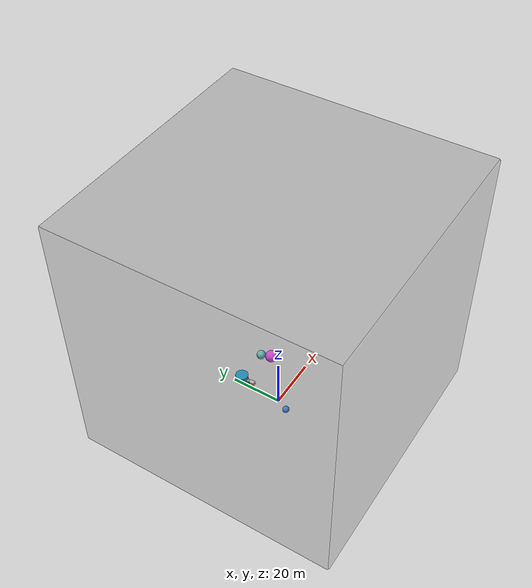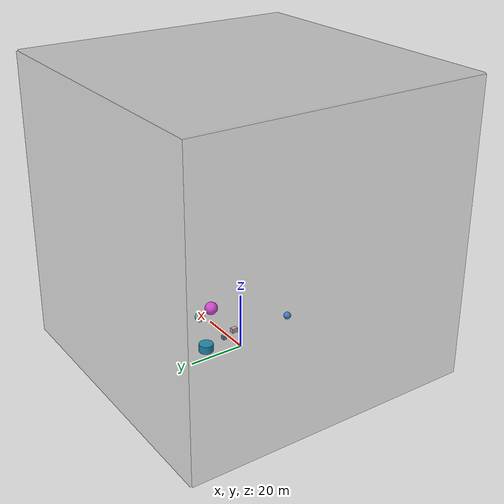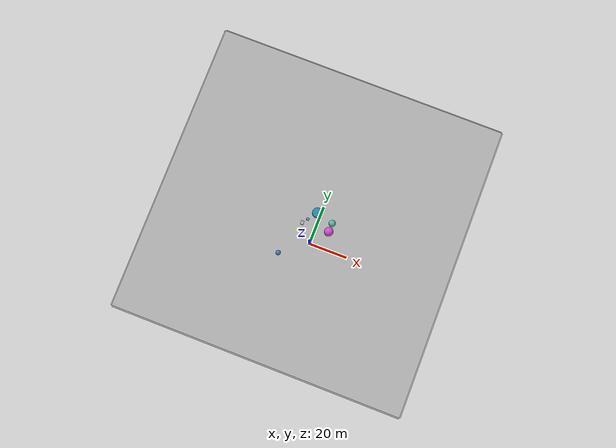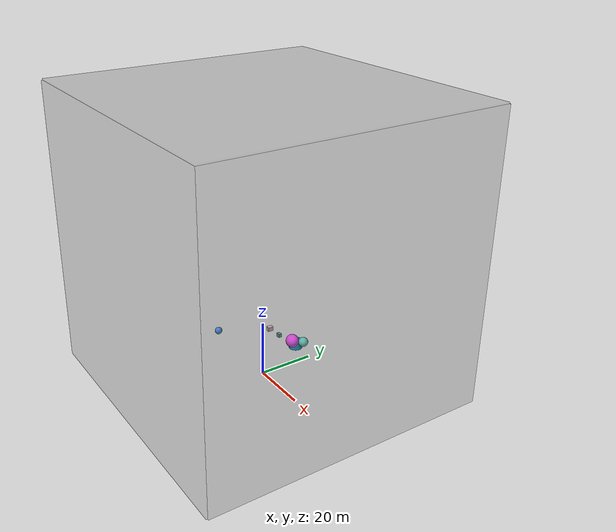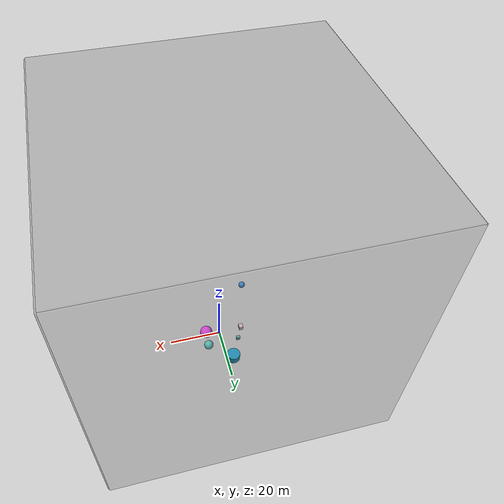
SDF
<!-- seed: 1717899315 -->
<sdf version='1.11'>
  <world name='world_0'>
    <gravity>0 0 -9.8066499999999994</gravity>
    <magnetic_field>5.5644999999999998e-06 2.2875799999999999e-05 -4.2388400000000002e-05</magnetic_field>
    <wind>
      <linear_velocity>1 4 0</linear_velocity>
    </wind>
    <physics name='physics' default='false' type='bullet'>
      <max_step_size>0.58267659790296489</max_step_size>
      <real_time_factor>5.5018045526824082</real_time_factor>
      <max_contacts>49</max_contacts>
    </physics>
    <model name='model_0'>
      <static>false</static>
      <self_collide>false</self_collide>
      <allow_auto_disable>true</allow_auto_disable>
      <enable_wind>false</enable_wind>
      <pose>-2.5478444161158613 -1.545276964035871 6.200798928530773 0 0 0</pose>
      <link name='link_3444'>
        <pose>-9.5791705742234612 -9.1122504473743966 8.6155550321520362 0 0 0</pose>
        <inertial>
          <pose>0 0 0 0 0 0</pose>
          <mass>1</mass>
          <inertia>
            <ixx>1</ixx>
            <ixy>0</ixy>
            <ixz>0</ixz>
            <iyy>1</iyy>
            <iyz>0</iyz>
            <izz>1</izz>
          </inertia>
        </inertial>
        <enable_wind>false</enable_wind>
        <collision name='collision_3444'>
          <pose>0 0 0 0 0 0</pose>
          <geometry>
            <sphere>
              <radius>1.2477564234247978</radius>
            </sphere>
          </geometry>
          <surface>
            <contact>
              <collide_bitmask>255</collide_bitmask>
            </contact>
            <friction>
              <ode>
                <mu>1</mu>
                <mu2>1</mu2>
                <slip1>0</slip1>
                <slip2>0</slip2>
                <fdir1>0 0 0</fdir1>
              </ode>
            </friction>
          </surface>
        </collision>
        <visual name='visual_3444'>
          <pose>0 0 0 0 0 0</pose>
          <geometry>
            <sphere>
              <radius>1.2477564234247978</radius>
            </sphere>
          </geometry>
          <cast_shadows>true</cast_shadows>
          <laser_retro>0</laser_retro>
          <transparency>0</transparency>
          <visibility_flags>4294967295</visibility_flags>
          <material>
            <ambient>0.300464362 0.584229469 0.879396856 1</ambient>
            <diffuse>0.300464362 0.584229469 0.879396856 1</diffuse>
            <specular>0 0 0 1</specular>
            <emissive>0 0 0 1</emissive>
            <render_order>0</render_order>
            <lighting>true</lighting>
            <double_sided>false</double_sided>
            <shader type='pixel'/>
          </material>
        </visual>
      </link>
      <link name='link_3445'>
        <pose>9.5582268508285537 9.1617335722387665 8.1626779781960561 0 0 0</pose>
        <inertial>
          <pose>0 0 0 0 0 0</pose>
          <mass>1</mass>
          <inertia>
            <ixx>1</ixx>
            <ixy>0</ixy>
            <ixz>0</ixz>
            <iyy>1</iyy>
            <iyz>0</iyz>
            <izz>1</izz>
          </inertia>
        </inertial>
        <enable_wind>false</enable_wind>
        <collision name='collision_3445'>
          <pose>0 0 0 0 0 0</pose>
          <geometry>
            <sphere>
              <radius>2.2673215422968451</radius>
            </sphere>
          </geometry>
          <surface>
            <contact>
              <collide_bitmask>255</collide_bitmask>
            </contact>
            <friction>
              <ode>
                <mu>1</mu>
                <mu2>1</mu2>
                <slip1>0</slip1>
                <slip2>0</slip2>
                <fdir1>0 0 0</fdir1>
              </ode>
            </friction>
          </surface>
        </collision>
        <visual name='visual_3445'>
          <pose>0 0 0 0 0 0</pose>
          <geometry>
            <sphere>
              <radius>2.2673215422968451</radius>
            </sphere>
          </geometry>
          <cast_shadows>true</cast_shadows>
          <laser_retro>0</laser_retro>
          <transparency>0</transparency>
          <visibility_flags>4294967295</visibility_flags>
          <material>
            <ambient>0.981184125 0.344227374 0.994997084 1</ambient>
            <diffuse>0.981184125 0.344227374 0.994997084 1</diffuse>
            <specular>0 0 0 1</specular>
            <emissive>0 0 0 1</emissive>
            <render_order>0</render_order>
            <lighting>true</lighting>
            <double_sided>false</double_sided>
            <shader type='pixel'/>
          </material>
        </visual>
      </link>
      <link name='link_3446'>
        <pose>-4.1525370812894202 8.9149053998512038 6.4017165026627696 0 0 0</pose>
        <inertial>
          <pose>0 0 0 0 0 0</pose>
          <mass>1</mass>
          <inertia>
            <ixx>1</ixx>
            <ixy>0</ixy>
            <ixz>0</ixz>
            <iyy>1</iyy>
            <iyz>0</iyz>
            <izz>1</izz>
          </inertia>
        </inertial>
        <enable_wind>false</enable_wind>
        <collision name='collision_3446'>
          <pose>0 0 0 0 0 0</pose>
          <geometry>
            <box>
              <size>1.5207156828180839 1.8732801306544311 1.5389931066112208</size>
            </box>
          </geometry>
          <surface>
            <contact>
              <collide_bitmask>255</collide_bitmask>
            </contact>
            <friction>
              <ode>
                <mu>1</mu>
                <mu2>1</mu2>
                <slip1>0</slip1>
                <slip2>0</slip2>
                <fdir1>0 0 0</fdir1>
              </ode>
            </friction>
          </surface>
        </collision>
        <visual name='visual_3446'>
          <pose>0 0 0 0 0 0</pose>
          <geometry>
            <box>
              <size>1.5207156828180839 1.8732801306544311 1.5389931066112208</size>
            </box>
          </geometry>
          <cast_shadows>true</cast_shadows>
          <laser_retro>0</laser_retro>
          <transparency>0</transparency>
          <visibility_flags>4294967295</visibility_flags>
          <material>
            <ambient>0.911945641 0.789908171 0.783842742 1</ambient>
            <diffuse>0.911945641 0.789908171 0.783842742 1</diffuse>
            <specular>0 0 0 1</specular>
            <emissive>0 0 0 1</emissive>
            <render_order>0</render_order>
            <lighting>true</lighting>
            <double_sided>false</double_sided>
            <shader type='pixel'/>
          </material>
        </visual>
      </link>
      <joint name='joint_2296' type='ball'>
        <pose>0 0 0 0 0 0</pose>
        <parent>link_3445</parent>
        <child>link_3446</child>
        <axis>
          <xyz>0.39310988802231583 0.48208136927246842 0.78298286656826943</xyz>
          <limit>
            <lower>-inf</lower>
            <upper>inf</upper>
            <effort>inf</effort>
            <velocity>9.9333756528747177</velocity>
            <stiffness>100000000</stiffness>
            <dissipation>1</dissipation>
          </limit>
          <dynamics>
            <spring_reference>0</spring_reference>
            <spring_stiffness>0</spring_stiffness>
            <damping>0</damping>
            <friction>0</friction>
          </dynamics>
        </axis>
        <axis2>
          <xyz>0.68916977282014813 0.67555856318229301 0.26204131724234131</xyz>
          <limit>
            <lower>-inf</lower>
            <upper>inf</upper>
            <effort>inf</effort>
            <velocity>2.621264264270021</velocity>
            <stiffness>100000000</stiffness>
            <dissipation>1</dissipation>
          </limit>
          <dynamics>
            <spring_reference>0</spring_reference>
            <spring_stiffness>0</spring_stiffness>
            <damping>0</damping>
            <friction>0</friction>
          </dynamics>
        </axis2>
      </joint>
      <joint name='joint_2297' type='screw'>
        <pose>0 0 0 0 0 0</pose>
        <parent>link_3444</parent>
        <child>link_3445</child>
        <axis>
          <xyz>0.94774562526950856 0.1172355631627162 0.29670532943044531</xyz>
          <limit>
            <lower>-inf</lower>
            <upper>inf</upper>
            <effort>inf</effort>
            <velocity>1.2186268151923962</velocity>
            <stiffness>100000000</stiffness>
            <dissipation>1</dissipation>
          </limit>
          <dynamics>
            <spring_reference>0</spring_reference>
            <spring_stiffness>0</spring_stiffness>
            <damping>0</damping>
            <friction>0</friction>
          </dynamics>
        </axis>
        <axis2>
          <xyz>0.68802944947073419 0.52693628240165569 0.4989525337642059</xyz>
          <limit>
            <lower>-inf</lower>
            <upper>inf</upper>
            <effort>inf</effort>
            <velocity>9.083344650903058</velocity>
            <stiffness>100000000</stiffness>
            <dissipation>1</dissipation>
          </limit>
          <dynamics>
            <spring_reference>0</spring_reference>
            <spring_stiffness>0</spring_stiffness>
            <damping>0</damping>
            <friction>0</friction>
          </dynamics>
        </axis2>
        <thread_pitch>-6.2831853071795862</thread_pitch>
      </joint>
    </model>
    <model name='model_1'>
      <static>true</static>
      <self_collide>false</self_collide>
      <allow_auto_disable>true</allow_auto_disable>
      <enable_wind>false</enable_wind>
      <pose>0.6029644867788555 8.6318871044463101 3.0232658023044658 0 0 0</pose>
      <link name='link_3447'>
        <pose>-5.5685227282174266 1.6288340963034784 6.7914401842877723 0 0 0</pose>
        <inertial>
          <pose>0 0 0 0 0 0</pose>
          <mass>1</mass>
          <inertia>
            <ixx>1</ixx>
            <ixy>0</ixy>
            <ixz>0</ixz>
            <iyy>1</iyy>
            <iyz>0</iyz>
            <izz>1</izz>
          </inertia>
        </inertial>
        <enable_wind>false</enable_wind>
        <collision name='collision_3447'>
          <pose>0 0 0 0 0 0</pose>
          <geometry>
            <box>
              <size>1.4392544643311964 1.0646837249805416 1.3195569118792903</size>
            </box>
          </geometry>
          <surface>
            <contact>
              <collide_bitmask>255</collide_bitmask>
            </contact>
            <friction>
              <ode>
                <mu>1</mu>
                <mu2>1</mu2>
                <slip1>0</slip1>
                <slip2>0</slip2>
                <fdir1>0 0 0</fdir1>
              </ode>
            </friction>
          </surface>
        </collision>
        <visual name='visual_3447'>
          <pose>0 0 0 0 0 0</pose>
          <geometry>
            <box>
              <size>1.4392544643311964 1.0646837249805416 1.3195569118792903</size>
            </box>
          </geometry>
          <cast_shadows>true</cast_shadows>
          <laser_retro>0</laser_retro>
          <transparency>0</transparency>
          <visibility_flags>4294967295</visibility_flags>
          <material>
            <ambient>0.457262903 0.685738564 0.688385189 1</ambient>
            <diffuse>0.457262903 0.685738564 0.688385189 1</diffuse>
            <specular>0 0 0 1</specular>
            <emissive>0 0 0 1</emissive>
            <render_order>0</render_order>
            <lighting>true</lighting>
            <double_sided>false</double_sided>
            <shader type='pixel'/>
          </material>
        </visual>
      </link>
      <link name='link_3448'>
        <pose>-2.4146053491320281 6.7371710474739643 3.099667566516966 0 0 0</pose>
        <inertial>
          <pose>0 0 0 0 0 0</pose>
          <mass>1</mass>
          <inertia>
            <ixx>1</ixx>
            <ixy>0</ixy>
            <ixz>0</ixz>
            <iyy>1</iyy>
            <iyz>0</iyz>
            <izz>1</izz>
          </inertia>
        </inertial>
        <enable_wind>false</enable_wind>
        <collision name='collision_3448'>
          <pose>0 0 0 0 0 0</pose>
          <geometry>
            <cylinder>
              <radius>2.475996733381491</radius>
              <length>2.7466128193163559</length>
            </cylinder>
          </geometry>
          <surface>
            <contact>
              <collide_bitmask>255</collide_bitmask>
            </contact>
            <friction>
              <ode>
                <mu>1</mu>
                <mu2>1</mu2>
                <slip1>0</slip1>
                <slip2>0</slip2>
                <fdir1>0 0 0</fdir1>
              </ode>
            </friction>
          </surface>
        </collision>
        <visual name='visual_3448'>
          <pose>0 0 0 0 0 0</pose>
          <geometry>
            <cylinder>
              <radius>2.475996733381491</radius>
              <length>2.7466128193163559</length>
            </cylinder>
          </geometry>
          <cast_shadows>true</cast_shadows>
          <laser_retro>0</laser_retro>
          <transparency>0</transparency>
          <visibility_flags>4294967295</visibility_flags>
          <material>
            <ambient>0.142345026 0.634770691 0.80190134 1</ambient>
            <diffuse>0.142345026 0.634770691 0.80190134 1</diffuse>
            <specular>0 0 0 1</specular>
            <emissive>0 0 0 1</emissive>
            <render_order>0</render_order>
            <lighting>true</lighting>
            <double_sided>false</double_sided>
            <shader type='pixel'/>
          </material>
        </visual>
      </link>
      <link name='link_3449'>
        <pose>6.4977043023879268 3.582756416980498 9.3755846924825761 0 0 0</pose>
        <inertial>
          <pose>0 0 0 0 0 0</pose>
          <mass>1</mass>
          <inertia>
            <ixx>1</ixx>
            <ixy>0</ixy>
            <ixz>0</ixz>
            <iyy>1</iyy>
            <iyz>0</iyz>
            <izz>1</izz>
          </inertia>
        </inertial>
        <enable_wind>false</enable_wind>
        <collision name='collision_3449'>
          <pose>0 0 0 0 0 0</pose>
          <geometry>
            <sphere>
              <radius>1.7104687941957832</radius>
            </sphere>
          </geometry>
          <surface>
            <contact>
              <collide_bitmask>255</collide_bitmask>
            </contact>
            <friction>
              <ode>
                <mu>1</mu>
                <mu2>1</mu2>
                <slip1>0</slip1>
                <slip2>0</slip2>
                <fdir1>0 0 0</fdir1>
              </ode>
            </friction>
          </surface>
        </collision>
        <visual name='visual_3449'>
          <pose>0 0 0 0 0 0</pose>
          <geometry>
            <sphere>
              <radius>1.7104687941957832</radius>
            </sphere>
          </geometry>
          <cast_shadows>true</cast_shadows>
          <laser_retro>0</laser_retro>
          <transparency>0</transparency>
          <visibility_flags>4294967295</visibility_flags>
          <material>
            <ambient>0.433177024 0.843086779 0.803708911 1</ambient>
            <diffuse>0.433177024 0.843086779 0.803708911 1</diffuse>
            <specular>0 0 0 1</specular>
            <emissive>0 0 0 1</emissive>
            <render_order>0</render_order>
            <lighting>true</lighting>
            <double_sided>false</double_sided>
            <shader type='pixel'/>
          </material>
        </visual>
      </link>
      <joint name='joint_2298' type='gearbox'>
        <pose>0 0 0 0 0 0</pose>
        <parent>link_3448</parent>
        <child>link_3449</child>
        <axis>
          <xyz>0.10769298805528807 0.14802827603236027 0.98310215634928344</xyz>
          <limit>
            <lower>-inf</lower>
            <upper>inf</upper>
            <effort>inf</effort>
            <velocity>6.7350869702945246</velocity>
            <stiffness>100000000</stiffness>
            <dissipation>1</dissipation>
          </limit>
          <dynamics>
            <spring_reference>0</spring_reference>
            <spring_stiffness>0</spring_stiffness>
            <damping>0</damping>
            <friction>0</friction>
          </dynamics>
        </axis>
        <axis2>
          <xyz>0.84089811962855054 0.27495670167451236 0.46614285858461979</xyz>
          <limit>
            <lower>-inf</lower>
            <upper>inf</upper>
            <effort>inf</effort>
            <velocity>5.494046671779266</velocity>
            <stiffness>100000000</stiffness>
            <dissipation>1</dissipation>
          </limit>
          <dynamics>
            <spring_reference>0</spring_reference>
            <spring_stiffness>0</spring_stiffness>
            <damping>0</damping>
            <friction>0</friction>
          </dynamics>
        </axis2>
      </joint>
      <joint name='joint_2299' type='revolute'>
        <pose>0 0 0 0 0 0</pose>
        <parent>link_3449</parent>
        <child>link_3447</child>
        <axis>
          <xyz>0.10704482532837338 0.79031251201084596 0.60328064673875004</xyz>
          <limit>
            <lower>-inf</lower>
            <upper>inf</upper>
            <effort>inf</effort>
            <velocity>5.5425603964198347</velocity>
            <stiffness>100000000</stiffness>
            <dissipation>1</dissipation>
          </limit>
          <dynamics>
            <spring_reference>0</spring_reference>
            <spring_stiffness>0</spring_stiffness>
            <damping>0</damping>
            <friction>0</friction>
          </dynamics>
        </axis>
        <axis2>
          <xyz>0.34352649075579733 0.5571698395518071 0.75601013223555447</xyz>
          <limit>
            <lower>-inf</lower>
            <upper>inf</upper>
            <effort>inf</effort>
            <velocity>2.4802528691656853</velocity>
            <stiffness>100000000</stiffness>
            <dissipation>1</dissipation>
          </limit>
          <dynamics>
            <spring_reference>0</spring_reference>
            <spring_stiffness>0</spring_stiffness>
            <damping>0</damping>
            <friction>0</friction>
          </dynamics>
        </axis2>
      </joint>
    </model>
    <model name='ground_model'>
      <static>true</static>
      <self_collide>false</self_collide>
      <allow_auto_disable>true</allow_auto_disable>
      <enable_wind>false</enable_wind>
      <pose>0 0 0 0 0 0</pose>
      <link name='ground_link'>
        <pose>0 0 0 0 0 0</pose>
        <inertial>
          <pose>0 0 0 0 0 0</pose>
          <mass>1</mass>
          <inertia>
            <ixx>1</ixx>
            <ixy>0</ixy>
            <ixz>0</ixz>
            <iyy>1</iyy>
            <iyz>0</iyz>
            <izz>1</izz>
          </inertia>
        </inertial>
        <enable_wind>false</enable_wind>
        <collision name='ground_collision'>
          <pose>0 0 0 0 0 0</pose>
          <geometry>
            <plane>
              <normal>0 0 1</normal>
              <size>100 100</size>
            </plane>
          </geometry>
          <surface>
            <contact>
              <collide_bitmask>255</collide_bitmask>
            </contact>
            <friction>
              <ode>
                <mu>1</mu>
                <mu2>1</mu2>
                <slip1>0</slip1>
                <slip2>0</slip2>
                <fdir1>0 0 0</fdir1>
              </ode>
            </friction>
          </surface>
        </collision>
      </link>
    </model>
    <model name='ceiling_model'>
      <static>true</static>
      <self_collide>false</self_collide>
      <allow_auto_disable>true</allow_auto_disable>
      <enable_wind>false</enable_wind>
      <pose>0 0 100 0 0 0</pose>
      <link name='ceiling_link'>
        <pose>0 0 0 0 0 0</pose>
        <inertial>
          <pose>0 0 0 0 0 0</pose>
          <mass>1</mass>
          <inertia>
            <ixx>1</ixx>
            <ixy>0</ixy>
            <ixz>0</ixz>
            <iyy>1</iyy>
            <iyz>0</iyz>
            <izz>1</izz>
          </inertia>
        </inertial>
        <enable_wind>false</enable_wind>
        <collision name='ceiling_collision'>
          <pose>0 0 0 0 0 0</pose>
          <geometry>
            <box>
              <size>102 102 3</size>
            </box>
          </geometry>
          <surface>
            <contact>
              <collide_bitmask>255</collide_bitmask>
            </contact>
            <friction>
              <ode>
                <mu>1</mu>
                <mu2>1</mu2>
                <slip1>0</slip1>
                <slip2>0</slip2>
                <fdir1>0 0 0</fdir1>
              </ode>
            </friction>
          </surface>
        </collision>
        <visual name='ceiling_visual'>
          <pose>0 0 0 0 0 0</pose>
          <geometry>
            <box>
              <size>102 102 3</size>
            </box>
          </geometry>
          <cast_shadows>true</cast_shadows>
          <laser_retro>0</laser_retro>
          <transparency>0</transparency>
          <visibility_flags>4294967295</visibility_flags>
          <material>
            <ambient>0.200000003 0.200000003 0.200000003 0.200000003</ambient>
            <diffuse>0.200000003 0.200000003 0.200000003 0.200000003</diffuse>
            <specular>0 0 0 1</specular>
            <emissive>0 0 0 1</emissive>
            <render_order>0</render_order>
            <lighting>true</lighting>
            <double_sided>false</double_sided>
            <shader type='pixel'/>
          </material>
        </visual>
      </link>
    </model>
    <model name='west_model'>
      <static>true</static>
      <self_collide>false</self_collide>
      <allow_auto_disable>true</allow_auto_disable>
      <enable_wind>false</enable_wind>
      <pose>0 50 50 0 0 0</pose>
      <link name='west_link'>
        <pose>0 0 0 0 0 0</pose>
        <inertial>
          <pose>0 0 0 0 0 0</pose>
          <mass>1</mass>
          <inertia>
            <ixx>1</ixx>
            <ixy>0</ixy>
            <ixz>0</ixz>
            <iyy>1</iyy>
            <iyz>0</iyz>
            <izz>1</izz>
          </inertia>
        </inertial>
        <enable_wind>false</enable_wind>
        <collision name='west_collision'>
          <pose>0 0 0 0 0 0</pose>
          <geometry>
            <box>
              <size>102 3 102</size>
            </box>
          </geometry>
          <surface>
            <contact>
              <collide_bitmask>255</collide_bitmask>
            </contact>
            <friction>
              <ode>
                <mu>1</mu>
                <mu2>1</mu2>
                <slip1>0</slip1>
                <slip2>0</slip2>
                <fdir1>0 0 0</fdir1>
              </ode>
            </friction>
          </surface>
        </collision>
        <visual name='west_visual'>
          <pose>0 0 0 0 0 0</pose>
          <geometry>
            <box>
              <size>102 3 102</size>
            </box>
          </geometry>
          <cast_shadows>true</cast_shadows>
          <laser_retro>0</laser_retro>
          <transparency>0</transparency>
          <visibility_flags>4294967295</visibility_flags>
          <material>
            <ambient>0.200000003 0.200000003 0.200000003 0.200000003</ambient>
            <diffuse>0.200000003 0.200000003 0.200000003 0.200000003</diffuse>
            <specular>0 0 0 1</specular>
            <emissive>0 0 0 1</emissive>
            <render_order>0</render_order>
            <lighting>true</lighting>
            <double_sided>false</double_sided>
            <shader type='pixel'/>
          </material>
        </visual>
      </link>
    </model>
    <model name='east_model'>
      <static>true</static>
      <self_collide>false</self_collide>
      <allow_auto_disable>true</allow_auto_disable>
      <enable_wind>false</enable_wind>
      <pose>0 -50 50 0 0 0</pose>
      <link name='east_link'>
        <pose>0 0 0 0 0 0</pose>
        <inertial>
          <pose>0 0 0 0 0 0</pose>
          <mass>1</mass>
          <inertia>
            <ixx>1</ixx>
            <ixy>0</ixy>
            <ixz>0</ixz>
            <iyy>1</iyy>
            <iyz>0</iyz>
            <izz>1</izz>
          </inertia>
        </inertial>
        <enable_wind>false</enable_wind>
        <collision name='east_collision'>
          <pose>0 0 0 0 0 0</pose>
          <geometry>
            <box>
              <size>102 3 102</size>
            </box>
          </geometry>
          <surface>
            <contact>
              <collide_bitmask>255</collide_bitmask>
            </contact>
            <friction>
              <ode>
                <mu>1</mu>
                <mu2>1</mu2>
                <slip1>0</slip1>
                <slip2>0</slip2>
                <fdir1>0 0 0</fdir1>
              </ode>
            </friction>
          </surface>
        </collision>
        <visual name='east_visual'>
          <pose>0 0 0 0 0 0</pose>
          <geometry>
            <box>
              <size>102 3 102</size>
            </box>
          </geometry>
          <cast_shadows>true</cast_shadows>
          <laser_retro>0</laser_retro>
          <transparency>0</transparency>
          <visibility_flags>4294967295</visibility_flags>
          <material>
            <ambient>0.200000003 0.200000003 0.200000003 0.200000003</ambient>
            <diffuse>0.200000003 0.200000003 0.200000003 0.200000003</diffuse>
            <specular>0 0 0 1</specular>
            <emissive>0 0 0 1</emissive>
            <render_order>0</render_order>
            <lighting>true</lighting>
            <double_sided>false</double_sided>
            <shader type='pixel'/>
          </material>
        </visual>
      </link>
    </model>
    <model name='north_model'>
      <static>true</static>
      <self_collide>false</self_collide>
      <allow_auto_disable>true</allow_auto_disable>
      <enable_wind>false</enable_wind>
      <pose>50 0 50 0 0 0</pose>
      <link name='north_link'>
        <pose>0 0 0 0 0 0</pose>
        <inertial>
          <pose>0 0 0 0 0 0</pose>
          <mass>1</mass>
          <inertia>
            <ixx>1</ixx>
            <ixy>0</ixy>
            <ixz>0</ixz>
            <iyy>1</iyy>
            <iyz>0</iyz>
            <izz>1</izz>
          </inertia>
        </inertial>
        <enable_wind>false</enable_wind>
        <collision name='north_collision'>
          <pose>0 0 0 0 0 0</pose>
          <geometry>
            <box>
              <size>3 102 102</size>
            </box>
          </geometry>
          <surface>
            <contact>
              <collide_bitmask>255</collide_bitmask>
            </contact>
            <friction>
              <ode>
                <mu>1</mu>
                <mu2>1</mu2>
                <slip1>0</slip1>
                <slip2>0</slip2>
                <fdir1>0 0 0</fdir1>
              </ode>
            </friction>
          </surface>
        </collision>
        <visual name='north_visual'>
          <pose>0 0 0 0 0 0</pose>
          <geometry>
            <box>
              <size>3 102 102</size>
            </box>
          </geometry>
          <cast_shadows>true</cast_shadows>
          <laser_retro>0</laser_retro>
          <transparency>0</transparency>
          <visibility_flags>4294967295</visibility_flags>
          <material>
            <ambient>0.200000003 0.200000003 0.200000003 0.200000003</ambient>
            <diffuse>0.200000003 0.200000003 0.200000003 0.200000003</diffuse>
            <specular>0 0 0 1</specular>
            <emissive>0 0 0 1</emissive>
            <render_order>0</render_order>
            <lighting>true</lighting>
            <double_sided>false</double_sided>
            <shader type='pixel'/>
          </material>
        </visual>
      </link>
    </model>
    <model name='south_model'>
      <static>true</static>
      <self_collide>false</self_collide>
      <allow_auto_disable>true</allow_auto_disable>
      <enable_wind>false</enable_wind>
      <pose>-50 0 50 0 0 0</pose>
      <link name='south_link'>
        <pose>0 0 0 0 0 0</pose>
        <inertial>
          <pose>0 0 0 0 0 0</pose>
          <mass>1</mass>
          <inertia>
            <ixx>1</ixx>
            <ixy>0</ixy>
            <ixz>0</ixz>
            <iyy>1</iyy>
            <iyz>0</iyz>
            <izz>1</izz>
          </inertia>
        </inertial>
        <enable_wind>false</enable_wind>
        <collision name='south_collision'>
          <pose>0 0 0 0 0 0</pose>
          <geometry>
            <box>
              <size>3 102 102</size>
            </box>
          </geometry>
          <surface>
            <contact>
              <collide_bitmask>255</collide_bitmask>
            </contact>
            <friction>
              <ode>
                <mu>1</mu>
                <mu2>1</mu2>
                <slip1>0</slip1>
                <slip2>0</slip2>
                <fdir1>0 0 0</fdir1>
              </ode>
            </friction>
          </surface>
        </collision>
        <visual name='south_visual'>
          <pose>0 0 0 0 0 0</pose>
          <geometry>
            <box>
              <size>3 102 102</size>
            </box>
          </geometry>
          <cast_shadows>true</cast_shadows>
          <laser_retro>0</laser_retro>
          <transparency>0</transparency>
          <visibility_flags>4294967295</visibility_flags>
          <material>
            <ambient>0.200000003 0.200000003 0.200000003 0.200000003</ambient>
            <diffuse>0.200000003 0.200000003 0.200000003 0.200000003</diffuse>
            <specular>0 0 0 1</specular>
            <emissive>0 0 0 1</emissive>
            <render_order>0</render_order>
            <lighting>true</lighting>
            <double_sided>false</double_sided>
            <shader type='pixel'/>
          </material>
        </visual>
      </link>
    </model>
    <atmosphere type='adiabatic'>
      <temperature>288.14999999999998</temperature>
      <pressure>101325</pressure>
      <temperature_gradient>-0.0064999999999999997</temperature_gradient>
    </atmosphere>
    <scene>
      <ambient>0.400000006 0.400000006 0.400000006 1</ambient>
      <background>0.699999988 0.699999988 0.699999988 1</background>
      <grid>true</grid>
      <origin_visual>true</origin_visual>
      <shadows>true</shadows>
    </scene>
  </world>
</sdf>
